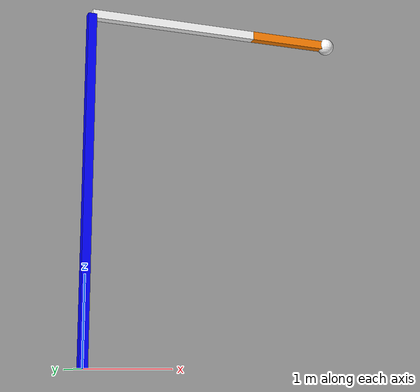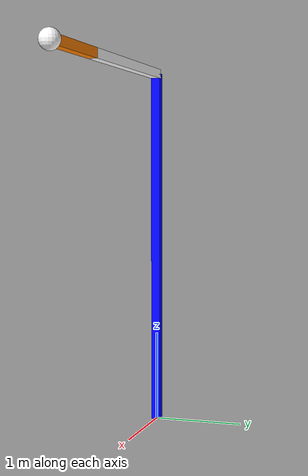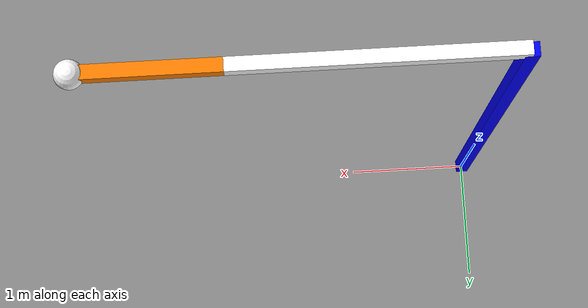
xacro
<?xml version="1.0"?>
<robot name="myfirstrobot" xmlns:xacro="http://www.ros.org/wiki/xacro">

  <!-- Constants for robot dimensions -->
  <xacro:property name="PI" value="3.1415926535897931"/>
  <xacro:property name="mass" value="1" /> <!-- arbitrary value for mass -->
  <xacro:property name="width" value="0.1" /> <!-- Square dimensions (widthxwidth) of beams -->
  <xacro:property name="height1" value="4" /> <!-- Link 1 -->
  <xacro:property name="height2" value="2" /> <!-- Link 2 -->
  <xacro:property name="height3" value="1" /> <!-- Link 3 -->

  <!-- ros_control plugin -->
    <gazebo>
        <plugin name="gazebo_ros_control" filename="libgazebo_ros_control.so">
            <robotNamespace>/myfirstrobot</robotNamespace>
      <robotSimType>gazebo_ros_control/DefaultRobotHWSim</robotSimType>
        </plugin>
    </gazebo>

  <!-- Link1 -->
  <gazebo reference="base_link">
    <material>Gazebo/Orange</material>
  </gazebo>

  <!-- Link2 -->
  <gazebo reference="middle_link">
    <mu1>0.2</mu1>
    <mu2>0.2</mu2>
    <material>Gazebo/Blue</material>
  </gazebo>

  <!-- Link3 -->
  <gazebo reference="top_link">
    <mu1>0.2</mu1>
    <mu2>0.2</mu2>
    <material>Gazebo/Orange</material>
  </gazebo>

    <!-- Import Rviz colors -->
  <xacro:include filename="$(find myurdf)/urdf/materials.urdf.xacro" />

  <!-- Used for fixing robot to Gazebo 'base_link' -->
  <link name="world"/>

  <joint name="fixed" type="fixed">
    <parent link="world"/>
    <child link="base_link"/>
  </joint>

    <!-- Base Link -->
    <link name="base_link">
        <visual>
            <geometry>
                <box size="${width} ${width} ${height1}"/>
            </geometry>
            <origin rpy="0 0 0" xyz="0 0 ${height1/2}"/>
            <material name="blue"/>
        </visual>
        <collision>
            <geometry>
                <cylinder length="${height1}" radius="${width+0.1}"/>
            </geometry>
            <origin rpy="0 0 0" xyz="0 0 ${height1/2}"/>
        </collision>
        <inertial>
      <origin xyz="0 0 ${height1/2}" rpy="0 0 0"/>
      <mass value="${mass}"/>
      <inertia
                ixx="${mass / 12.0 * (width*width + width*width)}" ixy="0.0" ixz="0.0"
            iyy="${mass / 12.0 * (height1*height1 + width*width)}" iyz="0.0"
            izz="${mass / 12.0 * (width*width + height1*height1)}"/>
        </inertial>
    </link>

    <joint name="joint1" type="continuous">
        <parent link="base_link"/>
        <child link="middle_link"/>
        <origin rpy="0 0 0" xyz="0 0 ${height1}"/>
        <axis xyz="0 1 0"/>
    </joint>

    <link name="middle_link">
        <visual>
            <geometry>
                <box size="${width} ${width} ${height2}"/>
            </geometry>
            <origin rpy="0 ${PI/2} 0" xyz="${height2/2} 0 0"/>
            <material name="white"/>
        </visual>
        <collision>
            <geometry>
                <cylinder length="${height2}" radius="${width+0.1}"/>
            </geometry>
            <origin rpy="0 ${PI/2} 0" xyz="${height2/2} 0 0"/>
        </collision>
        <inertial>
      <origin xyz="${height2/2} 0 0" rpy="0 0 0"/>
      <mass value="${mass}"/>
      <inertia
                ixx="${mass / 12.0 * (width*width + height2*height2)}" ixy="0.0" ixz="0.0"
            iyy="${mass / 12.0 * (height2*height2 + width*width)}" iyz="0.0"
            izz="${mass / 12.0 * (width*width + width*width)}"/>
        </inertial>
    </link>

    <joint name="joint2" type="continuous">
        <parent link="middle_link"/>
        <child link="top_link"/>
        <origin rpy="0 0 0" xyz="${height2} 0 0"/>
        <axis xyz="0 1 0"/>
    </joint>

    <link name="top_link">
        <visual>
            <geometry>
                <box size="${width} ${width} ${height3}"/>
            </geometry>
            <origin rpy="0 ${PI/2} 0" xyz="${height3/2} 0 0"/>
            <material name="orange"/>
        </visual>
        <collision>
            <geometry>
                <cylinder length="${height3}" radius="${width+0.1}"/>
            </geometry>
            <origin rpy="0 ${PI/2} 0" xyz="${height3/2} 0 0"/>
        </collision>
        <inertial>
      <origin xyz="${height3/2} 0 0" rpy="0 0 0"/>
      <mass value="${mass}"/>
      <inertia
                ixx="${mass / 12.0 * (width*width + height3*height3)}" ixy="0.0" ixz="0.0"
            iyy="${mass / 12.0 * (height3*height3 + width*width)}" iyz="0.0"
            izz="${mass / 12.0 * (width*width + width*width)}"/>
        </inertial>
    </link>

    <joint name="end" type="revolute">
        <axis xyz="1 0 0"/>
        <limit effort="1000.0" lower="0.0" upper="0.548" velocity="0.5"/>
        <parent link="top_link"/>
        <child link="end_link"/>
        <origin rpy="0 0 0" xyz="${height3} 0 0"/>
    </joint>

    <link name="end_link">
        <visual>
            <geometry>
                <sphere radius="${width}"/>
            </geometry>
            <material name="white"/>
        </visual>
        <collision>
            <geometry>
                <sphere radius="${width+0.05}"/>
            </geometry>
        </collision>
        <inertial>
      <origin xyz="0 0 0" rpy="0 0 0"/>
      <mass value="${mass}"/>
      <inertia
                ixx="${mass / 12.0 * (width*width + width*width)}" ixy="0.0" ixz="0.0"
            iyy="${mass / 12.0 * (width*width + width*width)}" iyz="0.0"
            izz="${mass / 12.0 * (width*width + width*width)}"/>
        </inertial>
    </link>

  <transmission name="tran1">
    <type>transmission_interface/SimpleTransmission</type>
    <joint name="joint1">
      <hardwareInterface>hardware_interface/EffortJointInterface</hardwareInterface>
    </joint>
    <actuator name="motor1">
      <hardwareInterface>hardware_interface/EffortJointInterface</hardwareInterface>
      <mechanicalReduction>1</mechanicalReduction>
    </actuator>
  </transmission>

  <transmission name="tran2">
    <type>transmission_interface/SimpleTransmission</type>
    <joint name="joint2">
      <hardwareInterface>hardware_interface/EffortJointInterface</hardwareInterface>
    </joint>
    <actuator name="motor2">
      <hardwareInterface>hardware_interface/EffortJointInterface</hardwareInterface>
      <mechanicalReduction>1</mechanicalReduction>
    </actuator>
  </transmission>

  <transmission name="tran3">
    <type>transmission_interface/SimpleTransmission</type>
    <joint name="end">
      <hardwareInterface>hardware_interface/EffortJointInterface</hardwareInterface>
    </joint>
    <actuator name="motor3">
      <hardwareInterface>hardware_interface/EffortJointInterface</hardwareInterface>
      <mechanicalReduction>1</mechanicalReduction>
    </actuator>
  </transmission>
</robot>

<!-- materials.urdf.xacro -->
<robot name="materials" xmlns:xacro="http://www.ros.org/wiki/xacro">
    <!-- 定义蓝色 -->
    <material name="blue">
        <color rgba="0 0 1 1" />
    </material>

    <!-- 定义白色 -->
    <material name="white">
        <color rgba="1 1 1 1" />
    </material>

    <!-- 定义橙黄色 -->
    <material name="orange">
        <color rgba="1 0.5 0 1" />
    </material>

</robot>
